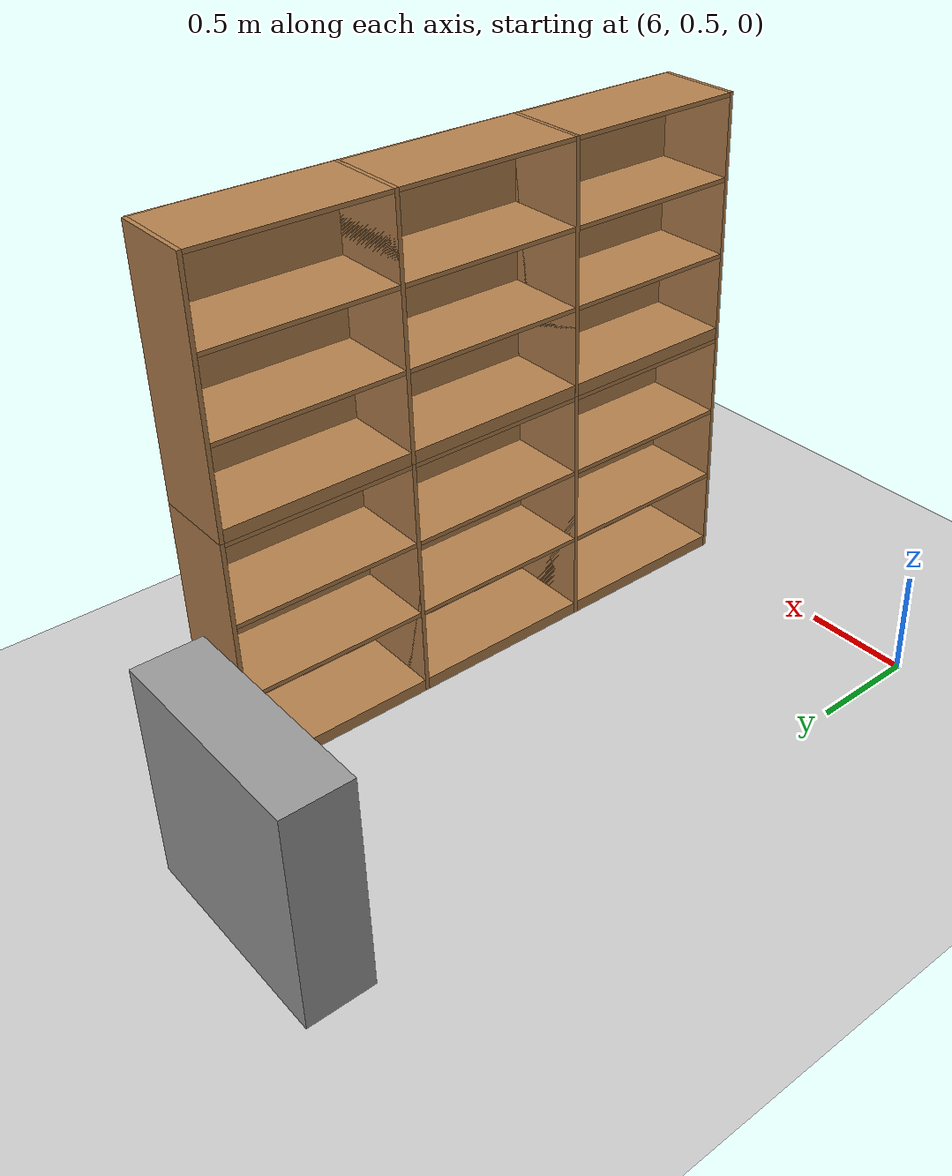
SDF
<sdf version="1.6">
 <world name="default">
  <model name="ground_plane">
   <static>1</static>
   <link name="link">
    <collision name="collision">
     <geometry><plane><normal>0 0 1</normal><size>16 9</size></plane></geometry>
     <surface>
      <contact><collide_bitmask>65535</collide_bitmask></contact>
      <friction><ode><mu>100</mu><mu2>50</mu2></ode></friction>
     </surface>
    </collision>
    <visual name="visual">
     <cast_shadows>0</cast_shadows>
     <geometry><plane><normal>0 0 1</normal><size>16 8</size></plane></geometry>
     <material>
      <script>
       <uri>file://final_project/materials/scripts</uri>
       <uri>file://final_project/materials/textures</uri>
       <name>MyGroundPlane/Image</name>
      </script>
     </material>
    </visual>
   </link>
  </model>
  <model name="unit_box_clone">
   <link name="link">
    <inertial>
     <mass>0.300562</mass>
     <inertia>
      <ixx>0.0273083</ixx>
      <ixy>0</ixy>
      <ixz>0</ixz>
      <iyy>0.0500937</iyy>
      <iyz>0</iyz>
      <izz>0.0273083</izz>
     </inertia>
    </inertial>
    <pose>-0 -0.356332 0 0 -0 0</pose>
    <visual name="visual">
     <geometry><box><size>1 0.30048 1</size></box></geometry>
     <material>
      <script><name>Gazebo/Grey</name><uri>file://media/materials/scripts/gazebo.material</uri></script>
     </material>
    </visual>
    <collision name="collision">
     <geometry><box><size>1 0.30048 1</size></box></geometry>
     <surface>
      <friction>
       <ode><mu>1</mu><mu2>1</mu2><fdir1>0 0 0</fdir1><slip1>0</slip1><slip2>0</slip2></ode>
       <torsional>
        <coefficient>1</coefficient>
        <patch_radius>0</patch_radius>
        <surface_radius>0</surface_radius>
        <use_patch_radius>1</use_patch_radius>
        <ode><slip>0</slip></ode>
       </torsional>
      </friction>
      <bounce><restitution_coefficient>0</restitution_coefficient><threshold>1e+06</threshold></bounce>
      <contact>
       <collide_without_contact>0</collide_without_contact>
       <collide_without_contact_bitmask>1</collide_without_contact_bitmask>
       <collide_bitmask>1</collide_bitmask>
       <ode>
        <soft_cfm>0</soft_cfm>
        <soft_erp>0.2</soft_erp>
        <kp>1e+13</kp>
        <kd>1</kd>
        <max_vel>0.01</max_vel>
        <min_depth>0</min_depth>
       </ode>
       <bullet>
        <split_impulse>1</split_impulse>
        <split_impulse_penetration_threshold>-0.01</split_impulse_penetration_threshold>
        <soft_cfm>0</soft_cfm>
        <soft_erp>0.2</soft_erp>
        <kp>1e+13</kp>
        <kd>1</kd>
       </bullet>
      </contact>
     </surface>
    </collision>
   </link>
   <static>1</static>
   <pose>6.59551 3.88207 0.5 0 -0 0</pose>
  </model>
  <model name="Bookshelf_clone_clone_clone_0">
   <static>1</static>
   <link name="link">
    <inertial><mass>1</mass></inertial>
    <collision name="back">
     <pose>0 0.005 0.6 0 -0 0</pose>
     <geometry><box><size>0.9 0.01 1.2</size></box></geometry>
    </collision>
    <visual name="visual1">
     <pose>0 0.005 0.6 0 -0 0</pose>
     <geometry><box><size>0.9 0.01 1.2</size></box></geometry>
     <material>
      <diffuse>1 1 1 1</diffuse>
      <script><uri>file://media/materials/scripts/gazebo.material</uri><name>Gazebo/Wood</name></script>
     </material>
    </visual>
    <collision name="left_side">
     <pose>0.45 -0.195 0.6 0 -0 0</pose>
     <geometry><box><size>0.02 0.4 1.2</size></box></geometry>
    </collision>
    <visual name="visual2">
     <pose>0.45 -0.195 0.6 0 -0 0</pose>
     <geometry><box><size>0.02 0.4 1.2</size></box></geometry>
     <material>
      <diffuse>1 1 1 1</diffuse>
      <script><uri>file://media/materials/scripts/gazebo.material</uri><name>Gazebo/Wood</name></script>
     </material>
    </visual>
    <collision name="right_side">
     <pose>-0.45 -0.195 0.6 0 -0 0</pose>
     <geometry><box><size>0.02 0.4 1.2</size></box></geometry>
    </collision>
    <visual name="visual3">
     <pose>-0.45 -0.195 0.6 0 -0 0</pose>
     <geometry><box><size>0.02 0.4 1.2</size></box></geometry>
     <material>
      <diffuse>1 1 1 1</diffuse>
      <script><uri>file://media/materials/scripts/gazebo.material</uri><name>Gazebo/Wood</name></script>
     </material>
    </visual>
    <collision name="bottom">
     <pose>0 -0.195 0.03 0 -0 0</pose>
     <geometry><box><size>0.88 0.4 0.06</size></box></geometry>
    </collision>
    <visual name="visual4">
     <pose>0 -0.195 0.03 0 -0 0</pose>
     <geometry><box><size>0.88 0.4 0.06</size></box></geometry>
     <material>
      <diffuse>1 1 1 1</diffuse>
      <script><uri>file://media/materials/scripts/gazebo.material</uri><name>Gazebo/Wood</name></script>
     </material>
    </visual>
    <collision name="top">
     <pose>0 -0.195 1.19 0 -0 0</pose>
     <geometry><box><size>0.88 0.4 0.02</size></box></geometry>
    </collision>
    <visual name="visual5">
     <pose>0 -0.195 1.19 0 -0 0</pose>
     <geometry><box><size>0.88 0.4 0.02</size></box></geometry>
     <material>
      <diffuse>1 1 1 1</diffuse>
      <script><uri>file://media/materials/scripts/gazebo.material</uri><name>Gazebo/Wood</name></script>
     </material>
    </visual>
    <collision name="low_shelf">
     <pose>0 -0.195 0.43 0 -0 0</pose>
     <geometry><box><size>0.88 0.4 0.02</size></box></geometry>
    </collision>
    <visual name="visual6">
     <pose>0 -0.195 0.43 0 -0 0</pose>
     <geometry><box><size>0.88 0.4 0.02</size></box></geometry>
     <material>
      <diffuse>1 1 1 1</diffuse>
      <script><uri>file://media/materials/scripts/gazebo.material</uri><name>Gazebo/Wood</name></script>
     </material>
    </visual>
    <collision name="high_shelf">
     <pose>0 -0.195 0.8 0 -0 0</pose>
     <geometry><box><size>0.88 0.4 0.02</size></box></geometry>
    </collision>
    <visual name="visual7">
     <pose>0 -0.195 0.8 0 -0 0</pose>
     <geometry><box><size>0.88 0.4 0.02</size></box></geometry>
     <material>
      <diffuse>1 1 1 1</diffuse>
      <script><uri>file://media/materials/scripts/gazebo.material</uri><name>Gazebo/Wood</name></script>
     </material>
    </visual>
   </link>
   <pose>7.7 2.7 0 0 0 -1.5706</pose>
  </model>
  <model name="Bookshelf_clone_clone_clone_0_clone">
   <static>1</static>
   <link name="link">
    <inertial><mass>1</mass></inertial>
    <collision name="back">
     <pose>0 0.005 0.6 0 -0 0</pose>
     <geometry><box><size>0.9 0.01 1.2</size></box></geometry>
    </collision>
    <visual name="visual1">
     <pose>0 0.005 0.6 0 -0 0</pose>
     <geometry><box><size>0.9 0.01 1.2</size></box></geometry>
     <material>
      <diffuse>1 1 1 1</diffuse>
      <script><uri>file://media/materials/scripts/gazebo.material</uri><name>Gazebo/Wood</name></script>
     </material>
    </visual>
    <collision name="left_side">
     <pose>0.45 -0.195 0.6 0 -0 0</pose>
     <geometry><box><size>0.02 0.4 1.2</size></box></geometry>
    </collision>
    <visual name="visual2">
     <pose>0.45 -0.195 0.6 0 -0 0</pose>
     <geometry><box><size>0.02 0.4 1.2</size></box></geometry>
     <material>
      <diffuse>1 1 1 1</diffuse>
      <script><uri>file://media/materials/scripts/gazebo.material</uri><name>Gazebo/Wood</name></script>
     </material>
    </visual>
    <collision name="right_side">
     <pose>-0.45 -0.195 0.6 0 -0 0</pose>
     <geometry><box><size>0.02 0.4 1.2</size></box></geometry>
    </collision>
    <visual name="visual3">
     <pose>-0.45 -0.195 0.6 0 -0 0</pose>
     <geometry><box><size>0.02 0.4 1.2</size></box></geometry>
     <material>
      <diffuse>1 1 1 1</diffuse>
      <script><uri>file://media/materials/scripts/gazebo.material</uri><name>Gazebo/Wood</name></script>
     </material>
    </visual>
    <collision name="bottom">
     <pose>0 -0.195 0.03 0 -0 0</pose>
     <geometry><box><size>0.88 0.4 0.06</size></box></geometry>
    </collision>
    <visual name="visual4">
     <pose>0 -0.195 0.03 0 -0 0</pose>
     <geometry><box><size>0.88 0.4 0.06</size></box></geometry>
     <material>
      <diffuse>1 1 1 1</diffuse>
      <script><uri>file://media/materials/scripts/gazebo.material</uri><name>Gazebo/Wood</name></script>
     </material>
    </visual>
    <collision name="top">
     <pose>0 -0.195 1.19 0 -0 0</pose>
     <geometry><box><size>0.88 0.4 0.02</size></box></geometry>
    </collision>
    <visual name="visual5">
     <pose>0 -0.195 1.19 0 -0 0</pose>
     <geometry><box><size>0.88 0.4 0.02</size></box></geometry>
     <material>
      <diffuse>1 1 1 1</diffuse>
      <script><uri>file://media/materials/scripts/gazebo.material</uri><name>Gazebo/Wood</name></script>
     </material>
    </visual>
    <collision name="low_shelf">
     <pose>0 -0.195 0.43 0 -0 0</pose>
     <geometry><box><size>0.88 0.4 0.02</size></box></geometry>
    </collision>
    <visual name="visual6">
     <pose>0 -0.195 0.43 0 -0 0</pose>
     <geometry><box><size>0.88 0.4 0.02</size></box></geometry>
     <material>
      <diffuse>1 1 1 1</diffuse>
      <script><uri>file://media/materials/scripts/gazebo.material</uri><name>Gazebo/Wood</name></script>
     </material>
    </visual>
    <collision name="high_shelf">
     <pose>0 -0.195 0.8 0 -0 0</pose>
     <geometry><box><size>0.88 0.4 0.02</size></box></geometry>
    </collision>
    <visual name="visual7">
     <pose>0 -0.195 0.8 0 -0 0</pose>
     <geometry><box><size>0.88 0.4 0.02</size></box></geometry>
     <material>
      <diffuse>1 1 1 1</diffuse>
      <script><uri>file://media/materials/scripts/gazebo.material</uri><name>Gazebo/Wood</name></script>
     </material>
    </visual>
   </link>
   <pose>7.7 2.7 1.2 0 0 -1.5706</pose>
  </model>
  <model name="Bookshelf_clone_clone_clone_1">
   <static>1</static>
   <link name="link">
    <inertial><mass>1</mass></inertial>
    <collision name="back">
     <pose>0 0.005 0.6 0 -0 0</pose>
     <geometry><box><size>0.9 0.01 1.2</size></box></geometry>
    </collision>
    <visual name="visual1">
     <pose>0 0.005 0.6 0 -0 0</pose>
     <geometry><box><size>0.9 0.01 1.2</size></box></geometry>
     <material>
      <diffuse>1 1 1 1</diffuse>
      <script><uri>file://media/materials/scripts/gazebo.material</uri><name>Gazebo/Wood</name></script>
     </material>
    </visual>
    <collision name="left_side">
     <pose>0.45 -0.195 0.6 0 -0 0</pose>
     <geometry><box><size>0.02 0.4 1.2</size></box></geometry>
    </collision>
    <visual name="visual2">
     <pose>0.45 -0.195 0.6 0 -0 0</pose>
     <geometry><box><size>0.02 0.4 1.2</size></box></geometry>
     <material>
      <diffuse>1 1 1 1</diffuse>
      <script><uri>file://media/materials/scripts/gazebo.material</uri><name>Gazebo/Wood</name></script>
     </material>
    </visual>
    <collision name="right_side">
     <pose>-0.45 -0.195 0.6 0 -0 0</pose>
     <geometry><box><size>0.02 0.4 1.2</size></box></geometry>
    </collision>
    <visual name="visual3">
     <pose>-0.45 -0.195 0.6 0 -0 0</pose>
     <geometry><box><size>0.02 0.4 1.2</size></box></geometry>
     <material>
      <diffuse>1 1 1 1</diffuse>
      <script><uri>file://media/materials/scripts/gazebo.material</uri><name>Gazebo/Wood</name></script>
     </material>
    </visual>
    <collision name="bottom">
     <pose>0 -0.195 0.03 0 -0 0</pose>
     <geometry><box><size>0.88 0.4 0.06</size></box></geometry>
    </collision>
    <visual name="visual4">
     <pose>0 -0.195 0.03 0 -0 0</pose>
     <geometry><box><size>0.88 0.4 0.06</size></box></geometry>
     <material>
      <diffuse>1 1 1 1</diffuse>
      <script><uri>file://media/materials/scripts/gazebo.material</uri><name>Gazebo/Wood</name></script>
     </material>
    </visual>
    <collision name="top">
     <pose>0 -0.195 1.19 0 -0 0</pose>
     <geometry><box><size>0.88 0.4 0.02</size></box></geometry>
    </collision>
    <visual name="visual5">
     <pose>0 -0.195 1.19 0 -0 0</pose>
     <geometry><box><size>0.88 0.4 0.02</size></box></geometry>
     <material>
      <diffuse>1 1 1 1</diffuse>
      <script><uri>file://media/materials/scripts/gazebo.material</uri><name>Gazebo/Wood</name></script>
     </material>
    </visual>
    <collision name="low_shelf">
     <pose>0 -0.195 0.43 0 -0 0</pose>
     <geometry><box><size>0.88 0.4 0.02</size></box></geometry>
    </collision>
    <visual name="visual6">
     <pose>0 -0.195 0.43 0 -0 0</pose>
     <geometry><box><size>0.88 0.4 0.02</size></box></geometry>
     <material>
      <diffuse>1 1 1 1</diffuse>
      <script><uri>file://media/materials/scripts/gazebo.material</uri><name>Gazebo/Wood</name></script>
     </material>
    </visual>
    <collision name="high_shelf">
     <pose>0 -0.195 0.8 0 -0 0</pose>
     <geometry><box><size>0.88 0.4 0.02</size></box></geometry>
    </collision>
    <visual name="visual7">
     <pose>0 -0.195 0.8 0 -0 0</pose>
     <geometry><box><size>0.88 0.4 0.02</size></box></geometry>
     <material>
      <diffuse>1 1 1 1</diffuse>
      <script><uri>file://media/materials/scripts/gazebo.material</uri><name>Gazebo/Wood</name></script>
     </material>
    </visual>
   </link>
   <pose>7.7 1.8 0 0 0 -1.5706</pose>
  </model>
  <model name="Bookshelf_clone_clone_clone_1_clone">
   <static>1</static>
   <link name="link">
    <inertial><mass>1</mass></inertial>
    <collision name="back">
     <pose>0 0.005 0.6 0 -0 0</pose>
     <geometry><box><size>0.9 0.01 1.2</size></box></geometry>
    </collision>
    <visual name="visual1">
     <pose>0 0.005 0.6 0 -0 0</pose>
     <geometry><box><size>0.9 0.01 1.2</size></box></geometry>
     <material>
      <diffuse>1 1 1 1</diffuse>
      <script><uri>file://media/materials/scripts/gazebo.material</uri><name>Gazebo/Wood</name></script>
     </material>
    </visual>
    <collision name="left_side">
     <pose>0.45 -0.195 0.6 0 -0 0</pose>
     <geometry><box><size>0.02 0.4 1.2</size></box></geometry>
    </collision>
    <visual name="visual2">
     <pose>0.45 -0.195 0.6 0 -0 0</pose>
     <geometry><box><size>0.02 0.4 1.2</size></box></geometry>
     <material>
      <diffuse>1 1 1 1</diffuse>
      <script><uri>file://media/materials/scripts/gazebo.material</uri><name>Gazebo/Wood</name></script>
     </material>
    </visual>
    <collision name="right_side">
     <pose>-0.45 -0.195 0.6 0 -0 0</pose>
     <geometry><box><size>0.02 0.4 1.2</size></box></geometry>
    </collision>
    <visual name="visual3">
     <pose>-0.45 -0.195 0.6 0 -0 0</pose>
     <geometry><box><size>0.02 0.4 1.2</size></box></geometry>
     <material>
      <diffuse>1 1 1 1</diffuse>
      <script><uri>file://media/materials/scripts/gazebo.material</uri><name>Gazebo/Wood</name></script>
     </material>
    </visual>
    <collision name="bottom">
     <pose>0 -0.195 0.03 0 -0 0</pose>
     <geometry><box><size>0.88 0.4 0.06</size></box></geometry>
    </collision>
    <visual name="visual4">
     <pose>0 -0.195 0.03 0 -0 0</pose>
     <geometry><box><size>0.88 0.4 0.06</size></box></geometry>
     <material>
      <diffuse>1 1 1 1</diffuse>
      <script><uri>file://media/materials/scripts/gazebo.material</uri><name>Gazebo/Wood</name></script>
     </material>
    </visual>
    <collision name="top">
     <pose>0 -0.195 1.19 0 -0 0</pose>
     <geometry><box><size>0.88 0.4 0.02</size></box></geometry>
    </collision>
    <visual name="visual5">
     <pose>0 -0.195 1.19 0 -0 0</pose>
     <geometry><box><size>0.88 0.4 0.02</size></box></geometry>
     <material>
      <diffuse>1 1 1 1</diffuse>
      <script><uri>file://media/materials/scripts/gazebo.material</uri><name>Gazebo/Wood</name></script>
     </material>
    </visual>
    <collision name="low_shelf">
     <pose>0 -0.195 0.43 0 -0 0</pose>
     <geometry><box><size>0.88 0.4 0.02</size></box></geometry>
    </collision>
    <visual name="visual6">
     <pose>0 -0.195 0.43 0 -0 0</pose>
     <geometry><box><size>0.88 0.4 0.02</size></box></geometry>
     <material>
      <diffuse>1 1 1 1</diffuse>
      <script><uri>file://media/materials/scripts/gazebo.material</uri><name>Gazebo/Wood</name></script>
     </material>
    </visual>
    <collision name="high_shelf">
     <pose>0 -0.195 0.8 0 -0 0</pose>
     <geometry><box><size>0.88 0.4 0.02</size></box></geometry>
    </collision>
    <visual name="visual7">
     <pose>0 -0.195 0.8 0 -0 0</pose>
     <geometry><box><size>0.88 0.4 0.02</size></box></geometry>
     <material>
      <diffuse>1 1 1 1</diffuse>
      <script><uri>file://media/materials/scripts/gazebo.material</uri><name>Gazebo/Wood</name></script>
     </material>
    </visual>
   </link>
   <pose>7.7 0.9 0 0 0 -1.5706</pose>
  </model>
  <model name="Bookshelf_clone_clone_clone_1_clone_0">
   <static>1</static>
   <link name="link">
    <inertial><mass>1</mass></inertial>
    <collision name="back">
     <pose>0 0.005 0.6 0 -0 0</pose>
     <geometry><box><size>0.9 0.01 1.2</size></box></geometry>
    </collision>
    <visual name="visual1">
     <pose>0 0.005 0.6 0 -0 0</pose>
     <geometry><box><size>0.9 0.01 1.2</size></box></geometry>
     <material>
      <diffuse>1 1 1 1</diffuse>
      <script><uri>file://media/materials/scripts/gazebo.material</uri><name>Gazebo/Wood</name></script>
     </material>
    </visual>
    <collision name="left_side">
     <pose>0.45 -0.195 0.6 0 -0 0</pose>
     <geometry><box><size>0.02 0.4 1.2</size></box></geometry>
    </collision>
    <visual name="visual2">
     <pose>0.45 -0.195 0.6 0 -0 0</pose>
     <geometry><box><size>0.02 0.4 1.2</size></box></geometry>
     <material>
      <diffuse>1 1 1 1</diffuse>
      <script><uri>file://media/materials/scripts/gazebo.material</uri><name>Gazebo/Wood</name></script>
     </material>
    </visual>
    <collision name="right_side">
     <pose>-0.45 -0.195 0.6 0 -0 0</pose>
     <geometry><box><size>0.02 0.4 1.2</size></box></geometry>
    </collision>
    <visual name="visual3">
     <pose>-0.45 -0.195 0.6 0 -0 0</pose>
     <geometry><box><size>0.02 0.4 1.2</size></box></geometry>
     <material>
      <diffuse>1 1 1 1</diffuse>
      <script><uri>file://media/materials/scripts/gazebo.material</uri><name>Gazebo/Wood</name></script>
     </material>
    </visual>
    <collision name="bottom">
     <pose>0 -0.195 0.03 0 -0 0</pose>
     <geometry><box><size>0.88 0.4 0.06</size></box></geometry>
    </collision>
    <visual name="visual4">
     <pose>0 -0.195 0.03 0 -0 0</pose>
     <geometry><box><size>0.88 0.4 0.06</size></box></geometry>
     <material>
      <diffuse>1 1 1 1</diffuse>
      <script><uri>file://media/materials/scripts/gazebo.material</uri><name>Gazebo/Wood</name></script>
     </material>
    </visual>
    <collision name="top">
     <pose>0 -0.195 1.19 0 -0 0</pose>
     <geometry><box><size>0.88 0.4 0.02</size></box></geometry>
    </collision>
    <visual name="visual5">
     <pose>0 -0.195 1.19 0 -0 0</pose>
     <geometry><box><size>0.88 0.4 0.02</size></box></geometry>
     <material>
      <diffuse>1 1 1 1</diffuse>
      <script><uri>file://media/materials/scripts/gazebo.material</uri><name>Gazebo/Wood</name></script>
     </material>
    </visual>
    <collision name="low_shelf">
     <pose>0 -0.195 0.43 0 -0 0</pose>
     <geometry><box><size>0.88 0.4 0.02</size></box></geometry>
    </collision>
    <visual name="visual6">
     <pose>0 -0.195 0.43 0 -0 0</pose>
     <geometry><box><size>0.88 0.4 0.02</size></box></geometry>
     <material>
      <diffuse>1 1 1 1</diffuse>
      <script><uri>file://media/materials/scripts/gazebo.material</uri><name>Gazebo/Wood</name></script>
     </material>
    </visual>
    <collision name="high_shelf">
     <pose>0 -0.195 0.8 0 -0 0</pose>
     <geometry><box><size>0.88 0.4 0.02</size></box></geometry>
    </collision>
    <visual name="visual7">
     <pose>0 -0.195 0.8 0 -0 0</pose>
     <geometry><box><size>0.88 0.4 0.02</size></box></geometry>
     <material>
      <diffuse>1 1 1 1</diffuse>
      <script><uri>file://media/materials/scripts/gazebo.material</uri><name>Gazebo/Wood</name></script>
     </material>
    </visual>
   </link>
   <pose>7.7 1.8 1.2 0 0 -1.5706</pose>
  </model>
  <model name="Bookshelf_clone_clone_clone_1_clone_clone">
   <static>1</static>
   <link name="link">
    <inertial><mass>1</mass></inertial>
    <collision name="back">
     <pose>0 0.005 0.6 0 -0 0</pose>
     <geometry><box><size>0.9 0.01 1.2</size></box></geometry>
    </collision>
    <visual name="visual1">
     <pose>0 0.005 0.6 0 -0 0</pose>
     <geometry><box><size>0.9 0.01 1.2</size></box></geometry>
     <material>
      <diffuse>1 1 1 1</diffuse>
      <script><uri>file://media/materials/scripts/gazebo.material</uri><name>Gazebo/Wood</name></script>
     </material>
    </visual>
    <collision name="left_side">
     <pose>0.45 -0.195 0.6 0 -0 0</pose>
     <geometry><box><size>0.02 0.4 1.2</size></box></geometry>
    </collision>
    <visual name="visual2">
     <pose>0.45 -0.195 0.6 0 -0 0</pose>
     <geometry><box><size>0.02 0.4 1.2</size></box></geometry>
     <material>
      <diffuse>1 1 1 1</diffuse>
      <script><uri>file://media/materials/scripts/gazebo.material</uri><name>Gazebo/Wood</name></script>
     </material>
    </visual>
    <collision name="right_side">
     <pose>-0.45 -0.195 0.6 0 -0 0</pose>
     <geometry><box><size>0.02 0.4 1.2</size></box></geometry>
    </collision>
    <visual name="visual3">
     <pose>-0.45 -0.195 0.6 0 -0 0</pose>
     <geometry><box><size>0.02 0.4 1.2</size></box></geometry>
     <material>
      <diffuse>1 1 1 1</diffuse>
      <script><uri>file://media/materials/scripts/gazebo.material</uri><name>Gazebo/Wood</name></script>
     </material>
    </visual>
    <collision name="bottom">
     <pose>0 -0.195 0.03 0 -0 0</pose>
     <geometry><box><size>0.88 0.4 0.06</size></box></geometry>
    </collision>
    <visual name="visual4">
     <pose>0 -0.195 0.03 0 -0 0</pose>
     <geometry><box><size>0.88 0.4 0.06</size></box></geometry>
     <material>
      <diffuse>1 1 1 1</diffuse>
      <script><uri>file://media/materials/scripts/gazebo.material</uri><name>Gazebo/Wood</name></script>
     </material>
    </visual>
    <collision name="top">
     <pose>0 -0.195 1.19 0 -0 0</pose>
     <geometry><box><size>0.88 0.4 0.02</size></box></geometry>
    </collision>
    <visual name="visual5">
     <pose>0 -0.195 1.19 0 -0 0</pose>
     <geometry><box><size>0.88 0.4 0.02</size></box></geometry>
     <material>
      <diffuse>1 1 1 1</diffuse>
      <script><uri>file://media/materials/scripts/gazebo.material</uri><name>Gazebo/Wood</name></script>
     </material>
    </visual>
    <collision name="low_shelf">
     <pose>0 -0.195 0.43 0 -0 0</pose>
     <geometry><box><size>0.88 0.4 0.02</size></box></geometry>
    </collision>
    <visual name="visual6">
     <pose>0 -0.195 0.43 0 -0 0</pose>
     <geometry><box><size>0.88 0.4 0.02</size></box></geometry>
     <material>
      <diffuse>1 1 1 1</diffuse>
      <script><uri>file://media/materials/scripts/gazebo.material</uri><name>Gazebo/Wood</name></script>
     </material>
    </visual>
    <collision name="high_shelf">
     <pose>0 -0.195 0.8 0 -0 0</pose>
     <geometry><box><size>0.88 0.4 0.02</size></box></geometry>
    </collision>
    <visual name="visual7">
     <pose>0 -0.195 0.8 0 -0 0</pose>
     <geometry><box><size>0.88 0.4 0.02</size></box></geometry>
     <material>
      <diffuse>1 1 1 1</diffuse>
      <script><uri>file://media/materials/scripts/gazebo.material</uri><name>Gazebo/Wood</name></script>
     </material>
    </visual>
   </link>
   <pose>7.7 0.9 1.2 0 0 -1.5706</pose>
  </model>
 </world>
</sdf>
